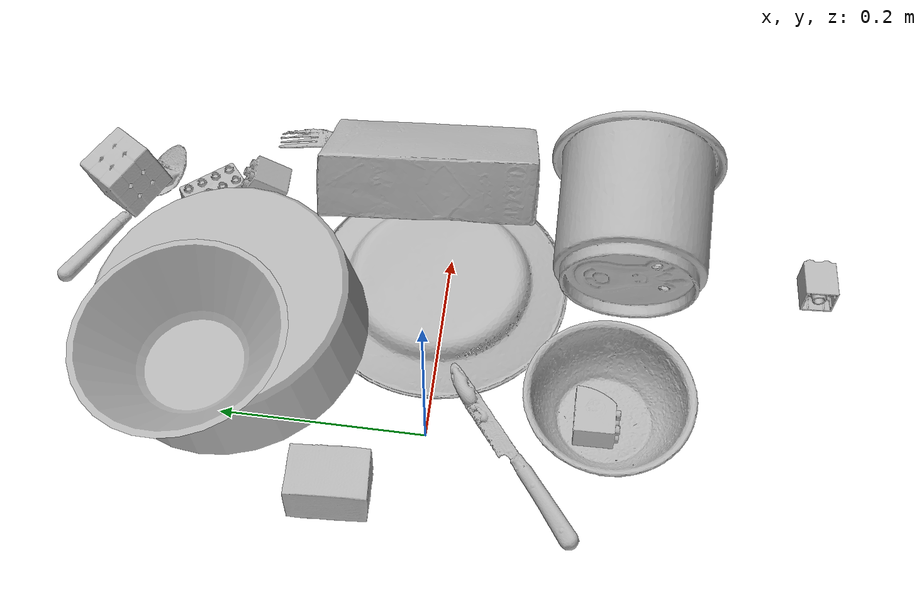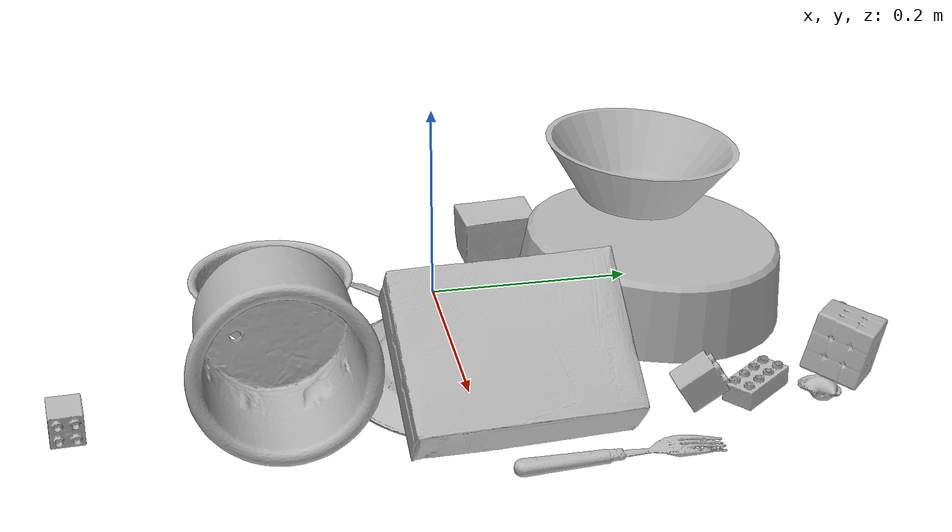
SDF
<sdf version="1.4">
  <world name="default">
    <light name="light1" type="point">
      <pose>0 0 1 0 0 0</pose>
      <diffuse>3 3 3 1</diffuse>
      <specular>3 3 3 1</specular>
    </light>
    <light name="light2" type="point">
      <pose>0 0.5 2 0 0 0</pose>
      <diffuse>1 1 1 1</diffuse>
      <specular>1 1 1 1</specular>
    </light>
    <light name="light3" type="point">
      <pose>0 0.5 2 0 0 0</pose>
      <diffuse>3 3 3 1</diffuse>
      <specular>3 3 3 1</specular>
    </light>
    <scene>
      <ambient>0.7 0.7 0.7</ambient>
    </scene>
    <model name="plate1">
      <link name="link_plate1">
        <collision name="default">
          <geometry>
            <mesh>
              <uri>model://plate/collision_meshes/collision.obj</uri>
              <scale>1.0 1.0 1.0</scale>
            </mesh>
          </geometry>
          <surface>
            <friction>
              <ode>
                <mu>0.5</mu>
                <mu2>0.5</mu2>
              </ode>
            </friction>
          <contact>
        <ode>
            <max_vel>0</max_vel>
            <min_depth>0.0001</min_depth>
            <kp>1e8</kp>
        </ode>
    </contact></surface>
        </collision>
        <visual name="default">
          <geometry>
            <mesh>
              <uri>model://plate/visual_meshes/visual.dae</uri>
              <scale>1.0 1.0 1.0</scale>
            </mesh>
          </geometry>
        </visual>
        <inertial>
          <mass>0.14927330613136292</mass>
          <pose>-0.0006044599576853216 0.00027825793949887156 -0.0010561984963715076 0.0022187657602494516 -0.0032254905015569333 0.45261542380491104</pose>
          <inertia>
            <ixx>0.0006983033</ixx>
            <iyy>0.0006916243</iyy>
            <izz>0.0013657772</izz>
            <ixy>0</ixy>
            <ixz>0</ixz>
            <iyz>0</iyz>
          </inertia>
        </inertial>
      </link>
      <pose>0.1673239916563034 0.008911188691854477 0.013912745751440525 3.1258955031779934 -0.007276097195149084 -0.4979178972336768</pose>
    </model>
    <model name="plate2">
      <link name="link_plate2">
        <collision name="default">
          <geometry>
            <mesh>
              <uri>model://pan_tefal/collision_meshes/collision.obj</uri>
              <scale>1.0 1.0 1.0</scale>
            </mesh>
          </geometry>
          <surface>
            <friction>
              <ode>
                <mu>0.5</mu>
                <mu2>0.5</mu2>
              </ode>
            </friction>
          <contact>
        <ode>
            <max_vel>0</max_vel>
            <min_depth>0.0001</min_depth>
            <kp>1e8</kp>
        </ode>
    </contact></surface>
        </collision>
        <visual name="default">
          <geometry>
            <mesh>
              <uri>model://pan_tefal/visual_meshes/visual.dae</uri>
              <scale>1.0 1.0 1.0</scale>
            </mesh>
          </geometry>
        </visual>
        <inertial>
          <mass>1.1722657680511475</mass>
          <pose>-0.00018002268916461617 3.2786720112198964e-05 -0.008514933288097382 0.0008190189984333748 -0.0003301390782503885 -0.3318520141268409</pose>
          <inertia>
            <ixx>0.008092094</ixx>
            <iyy>0.008144264</iyy>
            <izz>0.014895983</izz>
            <ixy>0</ixy>
            <ixz>0</ixz>
            <iyz>0</iyz>
          </inertia>
        </inertial>
      </link>
      <pose>0.08090279251337051 0.20429547131061554 0.050887588411569595 3.081825361970201 0.08316746574173552 1.199047727213239</pose>
    </model>
    <model name="bowl1">
      <link name="link_bowl1">
        <collision name="default">
          <geometry>
            <mesh>
              <uri>model://bowl_a/collision_meshes/collision.obj</uri>
              <scale>1.0 1.0 1.0</scale>
            </mesh>
          </geometry>
          <surface>
            <friction>
              <ode>
                <mu>0.5</mu>
                <mu2>0.5</mu2>
              </ode>
            </friction>
          <contact>
        <ode>
            <max_vel>0</max_vel>
            <min_depth>0.0001</min_depth>
            <kp>1e8</kp>
        </ode>
    </contact></surface>
        </collision>
        <visual name="default">
          <geometry>
            <mesh>
              <uri>model://bowl_a/visual_meshes/visual.dae</uri>
              <scale>1.0 1.0 1.0</scale>
            </mesh>
          </geometry>
        </visual>
        <inertial>
          <mass>0.2988097667694092</mass>
          <pose>0.0002786743571050465 4.731365334009752e-05 -0.0013765293406322598 -0.0009805349169279892 -0.001093820822183951 -0.19123530183129564</pose>
          <inertia>
            <ixx>0.00085072505</ixx>
            <iyy>0.00085594796</iyy>
            <izz>0.0015130473</izz>
            <ixy>0</ixy>
            <ixz>0</ixz>
            <iyz>0</iyz>
          </inertia>
        </inertial>
      </link>
      <pose>-0.00015490874648094177 0.21233415603637695 0.1171487420797348 -0.02091456816024684 0.0987187405667812 1.727087116173278</pose>
    </model>
    <model name="bowl2">
      <link name="link_bowl2">
        <collision name="default">
          <geometry>
            <mesh>
              <uri>model://bowl/collision_meshes/collision.obj</uri>
              <scale>1.0 1.0 1.0</scale>
            </mesh>
          </geometry>
          <surface>
            <friction>
              <ode>
                <mu>0.5</mu>
                <mu2>0.5</mu2>
              </ode>
            </friction>
          <contact>
        <ode>
            <max_vel>0</max_vel>
            <min_depth>0.0001</min_depth>
            <kp>1e8</kp>
        </ode>
    </contact></surface>
        </collision>
        <visual name="default">
          <geometry>
            <mesh>
              <uri>model://bowl/visual_meshes/visual.dae</uri>
              <scale>1.0 1.0 1.0</scale>
            </mesh>
          </geometry>
        </visual>
        <inertial>
          <mass>0.05087859928607941</mass>
          <pose>0.00020445352129172534 -0.001030206447467208 -0.0008042655535973608 -0.015764084400621287 0.014546790156403148 0.7140405806030785</pose>
          <inertia>
            <ixx>0.0001168722</ixx>
            <iyy>0.00011426082</iyy>
            <izz>0.0001966192</izz>
            <ixy>0</ixy>
            <ixz>0</ixz>
            <iyz>0</iyz>
          </inertia>
        </inertial>
      </link>
      <pose>0.03810475021600723 -0.16774453222751617 0.027779996395111084 -3.485931645563867e-07 -1.3082746980629195e-07 0.9270287702496346</pose>
    </model>
    <model name="silverware1">
      <link name="link_silverware1">
        <collision name="default">
          <geometry>
            <mesh>
              <uri>model://spoon/collision_meshes/collision.obj</uri>
              <scale>1.0 1.0 1.0</scale>
            </mesh>
          </geometry>
          <surface>
            <friction>
              <ode>
                <mu>0.5</mu>
                <mu2>0.5</mu2>
              </ode>
            </friction>
          <contact>
        <ode>
            <max_vel>0</max_vel>
            <min_depth>0.0001</min_depth>
            <kp>1e8</kp>
        </ode>
    </contact></surface>
        </collision>
        <visual name="default">
          <geometry>
            <mesh>
              <uri>model://spoon/visual_meshes/visual.dae</uri>
              <scale>1.0 1.0 1.0</scale>
            </mesh>
          </geometry>
        </visual>
        <inertial>
          <mass>0.031133336946368217</mass>
          <pose>-0.005526311229914427 -0.001603417214937508 -0.000727165665011853 0.03521724372111935 -0.03906583963771688 0.006150613707428126</pose>
          <inertia>
            <ixx>1.7316867e-06</ixx>
            <iyy>0.00011846133</iyy>
            <izz>0.00011931534</izz>
            <ixy>0</ixy>
            <ixz>0</ixz>
            <iyz>0</iyz>
          </inertia>
        </inertial>
      </link>
      <pose>0.21057285368442535 0.35101261734962463 0.008280848152935505 -0.15281163896701705 0.02508380569073365 -0.4675497026752875</pose>
    </model>
    <model name="box1">
      <link name="link_box1">
        <collision name="default">
          <geometry>
            <mesh>
              <uri>model://cracker_box/collision_meshes/collision.obj</uri>
              <scale>1.0 1.0 1.0</scale>
            </mesh>
          </geometry>
          <surface>
            <friction>
              <ode>
                <mu>0.5</mu>
                <mu2>0.5</mu2>
              </ode>
            </friction>
          <contact>
        <ode>
            <max_vel>0</max_vel>
            <min_depth>0.0001</min_depth>
            <kp>1e8</kp>
        </ode>
    </contact></surface>
        </collision>
        <visual name="default">
          <geometry>
            <mesh>
              <uri>model://cracker_box/visual_meshes/visual.dae</uri>
              <scale>1.0 1.0 1.0</scale>
            </mesh>
          </geometry>
        </visual>
        <inertial>
          <mass>2.900710344314575</mass>
          <pose>0.0009464158210903406 0.00025434247800149024 -0.0017029534792527556 -0.0003162075379034469 -0.011106488669169442 0.0025467947685016775</pose>
          <inertia>
            <ixx>0.007378111</ixx>
            <iyy>0.012182713</iyy>
            <izz>0.01738585</izz>
            <ixy>0</ixy>
            <ixz>0</ixz>
            <iyz>0</iyz>
          </inertia>
        </inertial>
      </link>
      <pose>0.25868159532546997 0.028965063393115997 0.07266596704721451 -2.4717005386997433 -0.0050160714874676665 1.6329104180261735</pose>
    </model>
    <model name="box2">
      <link name="link_box2">
        <collision name="default">
          <geometry>
            <mesh>
              <uri>model://rubiks_cube/collision_meshes/collision.obj</uri>
              <scale>1.0 1.0 1.0</scale>
            </mesh>
          </geometry>
          <surface>
            <friction>
              <ode>
                <mu>0.5</mu>
                <mu2>0.5</mu2>
              </ode>
            </friction>
          <contact>
        <ode>
            <max_vel>0</max_vel>
            <min_depth>0.0001</min_depth>
            <kp>1e8</kp>
        </ode>
    </contact></surface>
        </collision>
        <visual name="default">
          <geometry>
            <mesh>
              <uri>model://rubiks_cube/visual_meshes/visual.dae</uri>
              <scale>1.0 1.0 1.0</scale>
            </mesh>
          </geometry>
        </visual>
        <inertial>
          <mass>0.28670012950897217</mass>
          <pose>2.6721039830590598e-05 5.2569666877388954e-05 -7.264316082000732e-06 -0.05467310906580907 -0.09814045067101686 -0.03445712671449578</pose>
          <inertia>
            <ixx>0.00015842107</ixx>
            <iyy>0.0001576823</iyy>
            <izz>0.00015973386</izz>
            <ixy>0</ixy>
            <ixz>0</ixz>
            <iyz>0</iyz>
          </inertia>
        </inertial>
      </link>
      <pose>0.24231740832328796 0.3507615029811859 0.03783606365323067 -1.376872673847825 0.21659546649323075 2.54450504891517</pose>
    </model>
    <model name="cup1">
      <link name="link_cup1">
        <collision name="default">
          <geometry>
            <mesh>
              <uri>model://g_cups/collision_meshes/collision.obj</uri>
              <scale>2.0 2.0 2.0</scale>
            </mesh>
          </geometry>
          <surface>
            <friction>
              <ode>
                <mu>0.5</mu>
                <mu2>0.5</mu2>
              </ode>
            </friction>
          <contact>
        <ode>
            <max_vel>0</max_vel>
            <min_depth>0.0001</min_depth>
            <kp>1e8</kp>
        </ode>
    </contact></surface>
        </collision>
        <visual name="default">
          <geometry>
            <mesh>
              <uri>model://g_cups/visual_meshes/visual.dae</uri>
              <scale>2.0 2.0 2.0</scale>
            </mesh>
          </geometry>
        </visual>
        <inertial>
          <mass>0.7979594469070435</mass>
          <pose>-0.001589252962730825 -8.413367322646081e-05 -0.004265873227268457 -0.2138242542550812 -0.3141046905663657 0.3112069095441374</pose>
          <inertia>
            <ixx>0.0037255902</ixx>
            <iyy>0.003712916</iyy>
            <izz>0.0038590694</izz>
            <ixy>0</ixy>
            <ixz>0</ixz>
            <iyz>0</iyz>
          </inertia>
        </inertial>
      </link>
      <pose>0.21787185966968536 -0.17707358300685883 0.07977097481489182 -1.2990825415583647 1.1726346820979436 -1.3286011469920087</pose>
    </model>
    <model name="silverware2">
      <link name="link_silverware2">
        <collision name="default">
          <geometry>
            <mesh>
              <uri>model://fork/collision_meshes/collision.obj</uri>
              <scale>1.0 1.0 1.0</scale>
            </mesh>
          </geometry>
          <surface>
            <friction>
              <ode>
                <mu>0.5</mu>
                <mu2>0.5</mu2>
              </ode>
            </friction>
          <contact>
        <ode>
            <max_vel>0</max_vel>
            <min_depth>0.0001</min_depth>
            <kp>1e8</kp>
        </ode>
    </contact></surface>
        </collision>
        <visual name="default">
          <geometry>
            <mesh>
              <uri>model://fork/visual_meshes/visual.dae</uri>
              <scale>1.0 1.0 1.0</scale>
            </mesh>
          </geometry>
        </visual>
        <inertial>
          <mass>0.026295984163880348</mass>
          <pose>-0.02957003563642502 0.0004658822435885668 0.0003218861238565296 -0.013551585765180826 -0.010977835012843383 0.014453895551669751</pose>
          <inertia>
            <ixx>9.2182285e-07</ixx>
            <iyy>6.865125e-05</iyy>
            <izz>6.9063564e-05</izz>
            <ixy>0</ixy>
            <ixz>0</ixz>
            <iyz>0</iyz>
          </inertia>
        </inertial>
      </link>
      <pose>0.3411829471588135 0.1110389456152916 0.007446621544659138 -3.0634940715867804 0.0028358400155944494 1.6486254431736147</pose>
    </model>
    <model name="silverware3">
      <link name="link_silverware3">
        <collision name="default">
          <geometry>
            <mesh>
              <uri>model://knife/collision_meshes/collision.obj</uri>
              <scale>1.0 1.0 1.0</scale>
            </mesh>
          </geometry>
          <surface>
            <friction>
              <ode>
                <mu>0.5</mu>
                <mu2>0.5</mu2>
              </ode>
            </friction>
          <contact>
        <ode>
            <max_vel>0</max_vel>
            <min_depth>0.0001</min_depth>
            <kp>1e8</kp>
        </ode>
    </contact></surface>
        </collision>
        <visual name="default">
          <geometry>
            <mesh>
              <uri>model://knife/visual_meshes/visual.dae</uri>
              <scale>1.0 1.0 1.0</scale>
            </mesh>
          </geometry>
        </visual>
        <inertial>
          <mass>0.018686598166823387</mass>
          <pose>-0.023785265162587166 0.001527512213215232 5.06201722600963e-05 0.0730586728597059 0.01724841756758314 -0.007409823953988089</pose>
          <inertia>
            <ixx>5.3040145e-07</ixx>
            <iyy>7.1790884e-05</iyy>
            <izz>7.1961695e-05</izz>
            <ixy>0</ixy>
            <ixz>0</ixz>
            <iyz>0</iyz>
          </inertia>
        </inertial>
      </link>
      <pose>-0.013050857931375504 -0.08094637095928192 0.010428765788674355 2.7540210594079846 -0.029325884303184543 0.6749405649294777</pose>
    </model>
    <model name="toy1">
      <link name="link_toy1">
        <collision name="default">
          <geometry>
            <mesh>
              <uri>model://d_lego_duplo/collision_meshes/collision.obj</uri>
              <scale>1.0 1.0 1.0</scale>
            </mesh>
          </geometry>
          <surface>
            <friction>
              <ode>
                <mu>0.5</mu>
                <mu2>0.5</mu2>
              </ode>
            </friction>
          <contact>
        <ode>
            <max_vel>0</max_vel>
            <min_depth>0.0001</min_depth>
            <kp>1e8</kp>
        </ode>
    </contact></surface>
        </collision>
        <visual name="default">
          <geometry>
            <mesh>
              <uri>model://d_lego_duplo/visual_meshes/visual.dae</uri>
              <scale>1.0 1.0 1.0</scale>
            </mesh>
          </geometry>
        </visual>
        <inertial>
          <mass>0.057973701506853104</mass>
          <pose>0.002830564510077238 0.0001636612432776019 0.000858980929479003 0.08010949801199577 -0.38355255965562274 0.0010296774355632512</pose>
          <inertia>
            <ixx>1.1222855e-05</ixx>
            <iyy>1.5928275e-05</iyy>
            <izz>1.5360585e-05</izz>
            <ixy>0</ixy>
            <ixz>0</ixz>
            <iyz>0</iyz>
          </inertia>
        </inertial>
      </link>
      <pose>0.03119288757443428 -0.1595458984375 0.0192369744181633 -1.5369909669868118 -0.0010445972749598164 -3.135628700151796</pose>
    </model>
    <model name="toy2">
      <link name="link_toy2">
        <collision name="default">
          <geometry>
            <mesh>
              <uri>model://c_lego_duplo/collision_meshes/collision.obj</uri>
              <scale>1.0 1.0 1.0</scale>
            </mesh>
          </geometry>
          <surface>
            <friction>
              <ode>
                <mu>0.5</mu>
                <mu2>0.5</mu2>
              </ode>
            </friction>
          <contact>
        <ode>
            <max_vel>0</max_vel>
            <min_depth>0.0001</min_depth>
            <kp>1e8</kp>
        </ode>
    </contact></surface>
        </collision>
        <visual name="default">
          <geometry>
            <mesh>
              <uri>model://c_lego_duplo/visual_meshes/visual.dae</uri>
              <scale>1.0 1.0 1.0</scale>
            </mesh>
          </geometry>
        </visual>
        <inertial>
          <mass>0.03295557200908661</mass>
          <pose>0.00031645927811041474 0.0001946454867720604 0.0010453149443492293 -0.011520797378012098 0.005900082234647494 0.03110035414112205</pose>
          <inertia>
            <ixx>1.2681916e-05</ixx>
            <iyy>4.0510618e-06</iyy>
            <izz>1.4820123e-05</izz>
            <ixy>0</ixy>
            <ixz>0</ixz>
            <iyz>0</iyz>
          </inertia>
        </inertial>
      </link>
      <pose>0.2511584162712097 0.26340731978416443 0.012018817476928234 1.2224518129998836e-05 -2.6681814324188143e-05 -2.472339329889233</pose>
    </model>
    <model name="toy3">
      <link name="link_toy3">
        <collision name="default">
          <geometry>
            <mesh>
              <uri>model://foam_brick/collision_meshes/collision.obj</uri>
              <scale>1.0 1.0 1.0</scale>
            </mesh>
          </geometry>
          <surface>
            <friction>
              <ode>
                <mu>0.5</mu>
                <mu2>0.5</mu2>
              </ode>
            </friction>
          <contact>
        <ode>
            <max_vel>0</max_vel>
            <min_depth>0.0001</min_depth>
            <kp>1e8</kp>
        </ode>
    </contact></surface>
        </collision>
        <visual name="default">
          <geometry>
            <mesh>
              <uri>model://foam_brick/visual_meshes/visual.dae</uri>
              <scale>1.0 1.0 1.0</scale>
            </mesh>
          </geometry>
        </visual>
        <inertial>
          <mass>0.2026180773973465</mass>
          <pose>-0.00025224717683158815 0.0003458433202467859 -0.0002532101352699101 -0.2940154265809752 0.017274439844268085 -0.0007449877964386924</pose>
          <inertia>
            <ixx>8.850737e-05</ixx>
            <iyy>0.00014130655</iyy>
            <izz>0.00014310238</izz>
            <ixy>0</ixy>
            <ixz>0</ixz>
            <iyz>0</iyz>
          </inertia>
        </inertial>
      </link>
      <pose>-0.06979355216026306 0.07858050614595413 0.025496864691376686 3.1325084202449065 0.006607260107894948 -1.5097056500432482</pose>
    </model>
    <model name="toy4">
      <link name="link_toy4">
        <collision name="default">
          <geometry>
            <mesh>
              <uri>model://f_lego_duplo/collision_meshes/collision.obj</uri>
              <scale>1.0 1.0 1.0</scale>
            </mesh>
          </geometry>
          <surface>
            <friction>
              <ode>
                <mu>0.5</mu>
                <mu2>0.5</mu2>
              </ode>
            </friction>
          <contact>
        <ode>
            <max_vel>0</max_vel>
            <min_depth>0.0001</min_depth>
            <kp>1e8</kp>
        </ode>
    </contact></surface>
        </collision>
        <visual name="default">
          <geometry>
            <mesh>
              <uri>model://f_lego_duplo/visual_meshes/visual.dae</uri>
              <scale>1.0 1.0 1.0</scale>
            </mesh>
          </geometry>
        </visual>
        <inertial>
          <mass>0.026114314794540405</mass>
          <pose>2.3694528863416053e-05 0.00013393153494689614 0.001883787801489234 0.02983849389432246 -0.014425286210530337 -0.675657453158783</pose>
          <inertia>
            <ixx>5.5180976e-06</ixx>
            <iyy>5.5672576e-06</iyy>
            <izz>4.7899434e-06</izz>
            <ixy>0</ixy>
            <ixz>0</ixz>
            <iyz>0</iyz>
          </inertia>
        </inertial>
      </link>
      <pose>0.2103690654039383 -0.37107864022254944 0.016206787899136543 1.5790400336335992 0.00017245450513711234 1.6287833880169884</pose>
    </model>
    <model name="toy5">
      <link name="link_toy5">
        <collision name="default">
          <geometry>
            <mesh>
              <uri>model://b_lego_duplo/collision_meshes/collision.obj</uri>
              <scale>1.0 1.0 1.0</scale>
            </mesh>
          </geometry>
          <surface>
            <friction>
              <ode>
                <mu>0.5</mu>
                <mu2>0.5</mu2>
              </ode>
            </friction>
          <contact>
        <ode>
            <max_vel>0</max_vel>
            <min_depth>0.0001</min_depth>
            <kp>1e8</kp>
        </ode>
    </contact></surface>
        </collision>
        <visual name="default">
          <geometry>
            <mesh>
              <uri>model://b_lego_duplo/visual_meshes/visual.dae</uri>
              <scale>1.0 1.0 1.0</scale>
            </mesh>
          </geometry>
        </visual>
        <inertial>
          <mass>0.0471348837018013</mass>
          <pose>-0.00011053068010369316 -9.152583515970036e-06 0.0019294292433187366 -0.037494549971735465 -0.026354388193955382 0.45188781154390406</pose>
          <inertia>
            <ixx>9.646508e-06</ixx>
            <iyy>9.711356e-06</iyy>
            <izz>8.594722e-06</izz>
            <ixy>0</ixy>
            <ixz>0</ixz>
            <iyz>0</iyz>
          </inertia>
        </inertial>
      </link>
      <pose>0.26009950041770935 0.20714229345321655 0.024803686887025833 1.0203752720707957 0.004293777131046822 -3.097702606890646</pose>
    </model>
  <physics type="ode">
      <max_contacts>50</max_contacts>
      <ode>
        <solver>
          <type>quick</type>
          <iters>75</iters>
        </solver>
        <constraints>
          <contact_max_correcting_vel>0</contact_max_correcting_vel>
          <contact_surface_layer>0</contact_surface_layer>
        </constraints>
      </ode>
    </physics></world>
</sdf>
